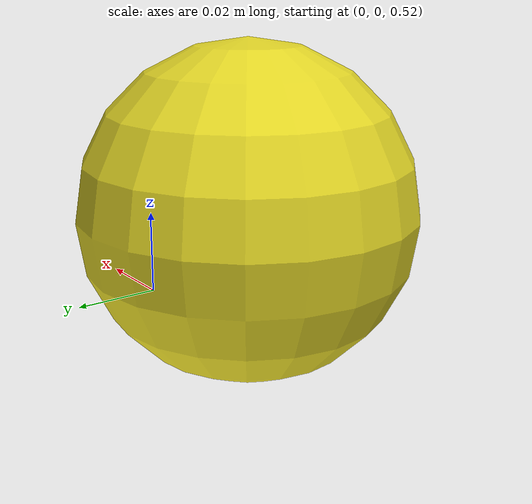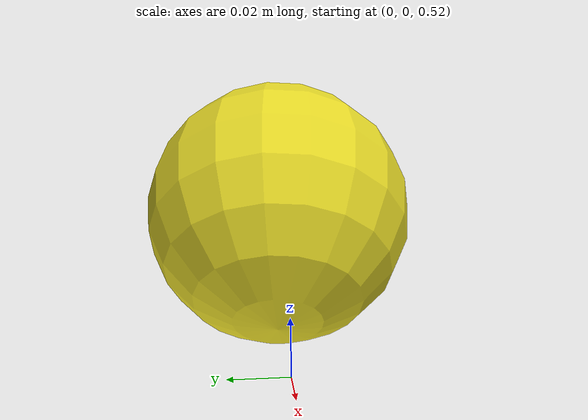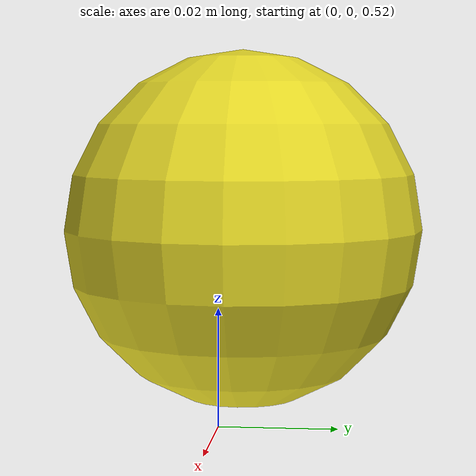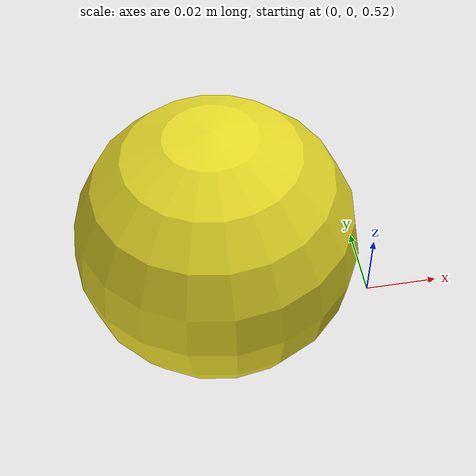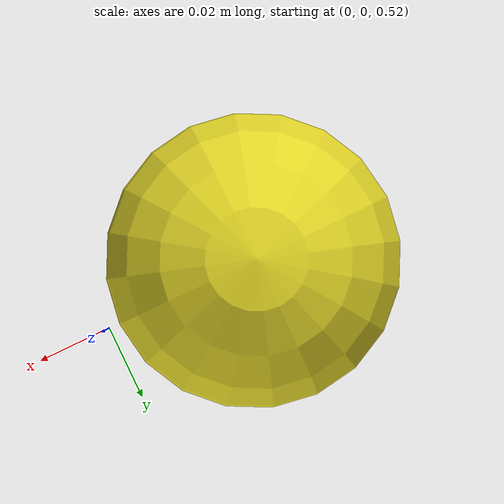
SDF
<?xml version='1.0'?>
<sdf version='1.6'>
  <model name='traffic_light_green'>
    <pose frame=''>0 0 0 0 0 0</pose>
    <link name='traffic_light_green'>
       <collision name='collision'>
          <pose frame=''>-0.041 0 0.55 0 0 0</pose>
          <geometry>
            <sphere>
              <radius>0.035</radius>
            </sphere>
          </geometry>
        </collision>
        <visual name='visual'>
          <pose frame=''>-0.041 0 0.55 0 0 0</pose>
          <geometry>
            <sphere>
              <radius>0.035</radius>
            </sphere>
          </geometry>
          <material>
            <script>
              <name>Gazebo/Yellow</name>
              <uri>file://media/materials/scripts/gazebo.material</uri>
            </script>
          </material>
        </visual>
        <self_collide>0</self_collide>
        <kinematic>0</kinematic>
      </link>
      <static>1</static>
    </model>
</sdf>
